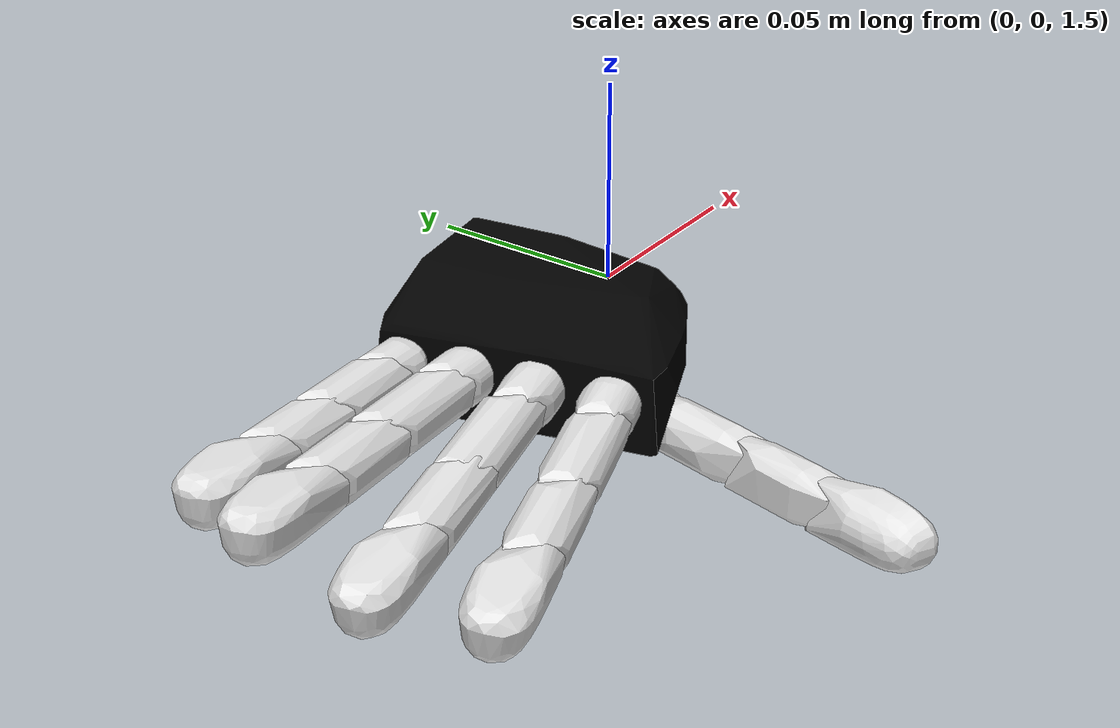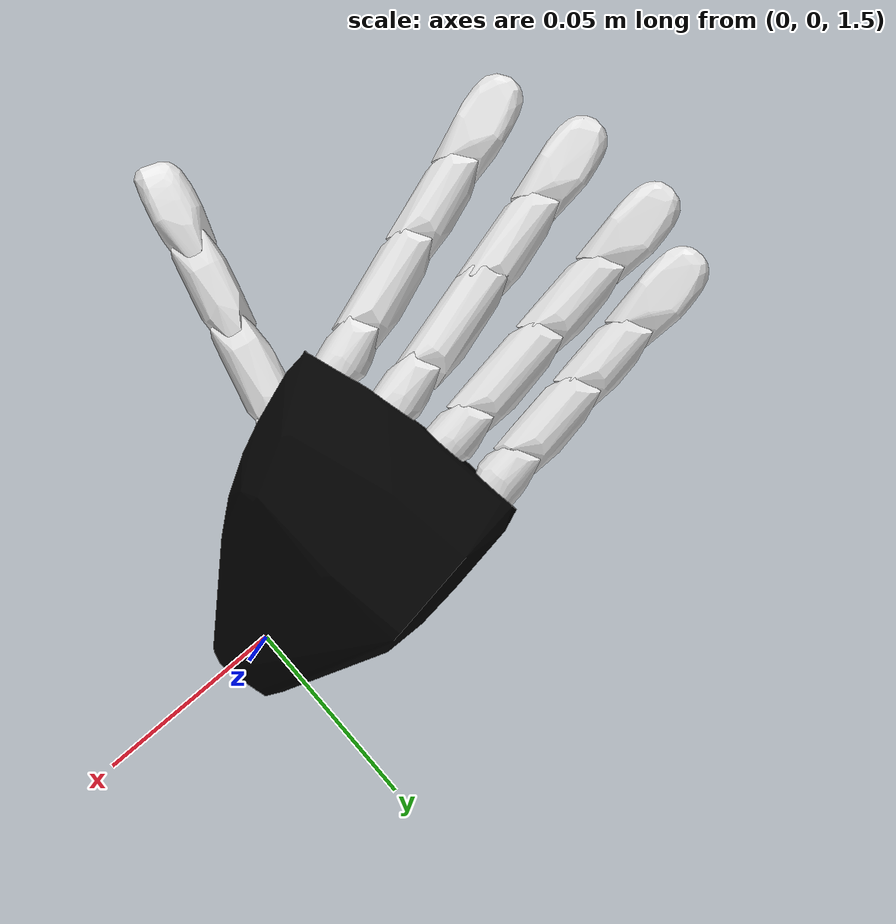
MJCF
<mujoco model="iCub">
    <compiler angle="radian" meshdir="../meshes/iCub/" inertiafromgeom="auto"/>
    <size njmax="1000" nconmax="10000" />
    <option timestep="0.005" gravity="0 0 -9.81" cone="pyramidal" iterations="20" noslip_iterations="20" noslip_tolerance="1e-6" />

    <default>
        <joint limited="true" damping="5.0" stiffness="0.01" frictionloss="0.01"/>
        <geom friction="1.0 0.005 0.0001" />
        <position kp="10" ctrllimited="true"/>
    </default>

    <asset>
        <mesh name="col_RightHandPalm"                              file="col_RightHandPalm.stl" />
        <mesh name="col_RightThumb0"                                file="col_RightThumb0.stl" />
        <mesh name="col_RightThumb1"                                file="col_RightThumb1.stl" />
        <mesh name="col_RightThumb2"                                file="col_RightThumb2.stl" />
        <mesh name="col_RightThumb3"                                file="col_RightThumb3.stl" />
        <mesh name="col_RightIndex0"                                file="col_RightIndex0.stl" />
        <mesh name="col_RightIndex1"                                file="col_RightIndex1.stl" />
        <mesh name="col_RightIndex2"                                file="col_RightIndex2.stl" />
        <mesh name="col_RightIndex3"                                file="col_RightIndex3.stl" />
        <mesh name="col_RightMiddle0"                               file="col_RightMiddle0.stl" />
        <mesh name="col_RightMiddle1"                               file="col_RightMiddle1.stl" />
        <mesh name="col_RightMiddle2"                               file="col_RightMiddle2.stl" />
        <mesh name="col_RightMiddle3"                               file="col_RightMiddle3.stl" />
        <mesh name="col_RightRing0"                                 file="col_RightRing0.stl" />
        <mesh name="col_RightRing1"                                 file="col_RightRing1.stl" />
        <mesh name="col_RightRing2"                                 file="col_RightRing2.stl" />
        <mesh name="col_RightRing3"                                 file="col_RightRing3.stl" />
        <mesh name="col_RightLittle0"                               file="col_RightLittle0.stl" />
        <mesh name="col_RightLittle1"                               file="col_RightLittle1.stl" />
        <mesh name="col_RightLittle2"                               file="col_RightLittle2.stl" />
        <mesh name="col_RightLittle3"                               file="col_RightLittle3.stl" />

        <texture type="skybox" builtin="gradient" rgb1="0.3 0.5 0.7" rgb2="0 0 0" width="512" height="512"/>
        <texture name="texplane" type="2d" builtin="checker" rgb1=".2 .3 .4" rgb2=".1 0.15 0.2" width="512" height="512" mark="cross" markrgb=".8 .8 .8"/>
        <texture name="texgeom" type="cube" builtin="flat" mark="cross" width="127" height="1278" rgb1="0.8 0.6 0.4" rgb2="0.8 0.6 0.4" markrgb="1 1 1" random="0.01"/>
        <material name="matplane" reflectance="0.3" texture="texplane" texrepeat="1 1" texuniform="true"/>
        <material name="matgeom" texture="texgeom" texuniform="true" rgba="0.8 0.6 .4 1"/>
    </asset>

    <visual>
        <map force="0.1" zfar="30"/>
        <rgba haze="0.15 0.25 0.35 1"/>
        <quality shadowsize="2048"/>
        <global offwidth="800" offheight="800"/>
    </visual>

    <worldbody>
        <geom name="floor" pos="0 0 0" size="0 0 0.25" type="plane" material="matplane" condim="3" />
        <light directional="false" diffuse=".2 .2 .2" specular="0 0 0" pos="0 0 5" dir="0 0 -1" castshadow="false"/>
        <light mode="targetbodycom" target="icub_r_hand" directional="false" diffuse=".8 .8 .8" specular="0.3 0.3 0.3" pos="0 0 4.0" dir="0 0 -1" attenuation="3 0 0"/>

        <body name="icub_r_hand_welding" pos="0.0 0.0 1.5" quat="0.707106781 0.707106781 0 0" mocap="true">
            <geom name="icub_r_hand_welding_geom" type="sphere" rgba="0 0 0 0" size="0.01" contype="0" conaffinity="0" mass="0.0"/>
        </body>

        <body name="icub_r_hand" pos="0.0 0.0 1.5" quat="0.707106781 0.707106781 0 0">
            <inertial pos="-0.0646682 0.0056002 0.0226813" quat="-0.112385 0.892031 0.231018 0.37186" mass="0.248289" diaginertia="0.0100407 0.010002 0.00995729" />
            <joint name="r_hand_freejoint" type="free" limited="false" damping="0.0" stiffness="0.0" frictionloss="0.0"/>
            <geom pos="0.00271607 -0.0015568 -0.00248235" quat="0.701057 -0.701057 0.0922959 0.0922959" type="mesh" rgba="0 0 0 1" mesh="col_RightHandPalm" condim="4"  contype="1" conaffinity="1"/>
            <body name="r_hand_dh_frame" pos="-0.05765429784284365 -0.005556799999999987 0.013693832308330513" quat="0.09229593181512326 0.09229593181512327 -0.7010573877867474 0.7010573877867475" >
                <site name="r_hand_dh_frame_site" type="sphere" rgba="0 0 0 0" size="0.005"/>
                <site name="r_hand_dh_frame_site_rotated" type="box" rgba="0 0 0 0" size="0.005 0.005 0.005" quat="0.924 0 0.383 0"/>
            </body>
            <body name="r_hand_thumb_0" pos="-0.0318492 -0.0040568 0.0192027" quat="0.0382606 0.614855 -0.0162249 0.787545">
                <inertial pos="0 0 0" mass="0.01" diaginertia="0.001 0.001 0.001" />
                <joint name="r_hand_thumb_0_joint" pos="0 0 0" axis="0 0 1" range="0 1.5708" />
                <geom quat="0 -0.707107 0.707107 0" type="mesh" rgba="0.9 0.9 0.9 1" mesh="col_RightThumb0" friction="1.0 0.05 0.01" solimp="0.95 0.95 0.01" solref="0.01 0.5" condim="4" />
                <body name="r_hand_thumb_1" pos="0.0211 0.0049 0" quat="0.707107 -0.707107 0 0">
                    <inertial pos="0 0 0" mass="0.01" diaginertia="0.001 0.001 0.001" />
                    <joint name="r_hand_thumb_1_joint" pos="0 0 0" axis="0 0 1" range="0 1.5708" />
                    <geom quat="0 1 0 0" type="mesh" rgba="0.9 0.9 0.9 1" mesh="col_RightThumb1" friction="1.0 0.05 0.01" solimp="0.95 0.95 0.01" solref="0.01 0.5" condim="4" />
                    <body name="r_hand_thumb_2" pos="0.026 0 0">
                        <inertial pos="0 0 0" mass="0.01" diaginertia="0.001 0.001 0.001" />
                        <joint name="r_hand_thumb_2_joint" pos="0 0 0" axis="0 0 1" range="0 1.5708" stiffness="2"/>
                        <geom quat="0 1 0 0" type="mesh" rgba="0.9 0.9 0.9 1" mesh="col_RightThumb2" friction="1.0 0.05 0.01" solimp="0.95 0.95 0.01" solref="0.01 0.5" condim="4" />
                        <body name="r_hand_thumb_3" pos="0.022 0 0">
                            <inertial pos="0 0 0" mass="0.01" diaginertia="0.001 0.001 0.001" />
                            <joint name="r_hand_thumb_3_joint" pos="0 0 0" axis="0 0 1" range="0 1.5708" stiffness="3"/>
                            <geom quat="0 0 0 1" type="mesh" rgba="0.9 0.9 0.9 1" mesh="col_RightThumb3" friction="3.5 0.05 0.01"  solimp="0.95 0.95 0.01" solref="0.01 0.5" condim="4" priority="1"/>
                        </body>
                    </body>
                </body>
            </body>
            <body name="r_hand_index_0" pos="-0.0525584 0.0051432 0.0394733" quat="0.120133 0.114274 -0.727348 0.665939">
                <inertial pos="0 0 0" mass="0.01" diaginertia="0.001 0.001 0.001" />
                <joint name="r_hand_index_0_joint" pos="0 0 0" axis="0 0 1" range="0 0.349066" ref="0.349066" />
                <geom quat="0 0 1 0" type="mesh" rgba="0.9 0.9 0.9 1" mesh="col_RightIndex0" friction="1.0 0.05 0.01" solimp="0.95 0.95 0.01" solref="0.01 0.5" condim="4" />
                <body name="r_hand_index_1" pos="0.0148 0.00175 0" quat="0.707107 0.707107 0 0">
                    <inertial pos="0 0 0" mass="0.01" diaginertia="0.001 0.001 0.001" />
                    <joint name="r_hand_index_1_joint" pos="0 0 0" axis="0 0 1" range="0 1.5708" />
                    <geom quat="0 1 0 0" type="mesh" rgba="0.9 0.9 0.9 1" mesh="col_RightIndex1" friction="1.0 0.05 0.01" solimp="0.95 0.95 0.01" solref="0.01 0.5" condim="4" />
                    <body name="r_hand_index_2" pos="0.0259 0 0">
                        <inertial pos="0 0 0" mass="0.01" diaginertia="0.001 0.001 0.001" />
                        <joint name="r_hand_index_2_joint" pos="0 0 0" axis="0 0 1" range="0 1.5708" stiffness="2"/>
                        <geom quat="0 1 0 0" type="mesh" rgba="0.9 0.9 0.9 1" mesh="col_RightIndex2" friction="1.0 0.05 0.01" solimp="0.95 0.95 0.01" solref="0.01 0.5" condim="4" />
                        <body name="r_hand_index_3" pos="0.022 0 0">
                            <inertial pos="0 0 0" mass="0.01" diaginertia="0.001 0.001 0.001" />
                            <joint name="r_hand_index_3_joint" pos="0 0 0" axis="0 0 1" range="0 1.5708" stiffness="3"/>
                            <geom quat="0 0 1 0" type="mesh" rgba="0.9 0.9 0.9 1" mesh="col_RightIndex3" friction="3.5 0.05 0.01"  solimp="0.95 0.95 0.01" solref="0.01 0.5" condim="4" priority="1"/>
                        </body>
                    </body>
                </body>
            </body>
            <body name="r_hand_middle_0" pos="-0.0575405 0.0060432 0.023778" quat="0.0922959 0.0922959 -0.701057 0.701057">
                <inertial pos="0 0 0" mass="0.01" diaginertia="0.001 0.001 0.001" />
                <joint name="r_hand_middle_0_joint" pos="0 0 0" axis="0 0 1" range="-0.1 0.1" damping="1000000" />
                <geom pos="0 0 0.0035" type="mesh" rgba="0.9 0.9 0.9 1" mesh="col_RightMiddle0" friction="1.0 0.05 0.01" solimp="0.95 0.95 0.01" solref="0.01 0.5" condim="4" />
                <body name="r_hand_middle_1" pos="0.0153 0.0022 0" quat="0.707107 0.707107 0 0">
                    <inertial pos="0 0 0" mass="0.01" diaginertia="0.001 0.001 0.001" />
                    <joint name="r_hand_middle_1_joint" pos="0 0 0" axis="0 0 1" range="0 1.5708" />
                    <geom quat="0 1 0 0" type="mesh" rgba="0.9 0.9 0.9 1" mesh="col_RightMiddle1" friction="1.0 0.05 0.01" solimp="0.95 0.95 0.01" solref="0.01 0.5" condim="4" />
                    <body name="r_hand_middle_2" pos="0.0258 0 0">
                        <inertial pos="0 0 0" mass="0.01" diaginertia="0.001 0.001 0.001" />
                        <joint name="r_hand_middle_2_joint" pos="0 0 0" axis="0 0 1" range="0 1.5708" stiffness="2"/>
                        <geom quat="0 0 0 1" type="mesh" rgba="0.9 0.9 0.9 1" mesh="col_RightMiddle2" friction="1.0 0.05 0.01" solimp="0.95 0.95 0.01" solref="0.01 0.5" condim="4" />
                        <body name="r_hand_middle_3" pos="0.024 0 0">
                            <inertial pos="0 0 0" mass="0.01" diaginertia="0.001 0.001 0.001" />
                            <joint name="r_hand_middle_3_joint" pos="0 0 0" axis="0 0 1" range="0 1.5708" stiffness="3"/>
                            <geom quat="0 0 0 1" type="mesh" rgba="0.9 0.9 0.9 1" mesh="col_RightMiddle3" friction="3.5 0.05 0.01"  solimp="0.95 0.95 0.01" solref="0.01 0.5" condim="4" priority="1"/>
                        </body>
                    </body>
                </body>
            </body>
            <body name="r_hand_ring_0" pos="-0.0606911 0.0054432 0.00865823" quat="0.0851337 0.0244894 -0.698657 0.709951">
                <inertial pos="0 0 0" mass="0.01" diaginertia="0.001 0.001 0.001" />
                <joint name="r_hand_ring_0_joint" pos="0 0 0" axis="0 0 1" range="-0.349066 0" ref="-0.349066" />
                <geom quat="0 0 1 0" type="mesh" rgba="0.9 0.9 0.9 1" mesh="col_RightRing0" friction="1.0 0.05 0.01" solimp="0.95 0.95 0.01" solref="0.01 0.5" condim="4" />
                <body name="r_hand_ring_1" pos="0.0148 0.00175 0" quat="0.707107 0.707107 0 0">
                    <inertial pos="0 0 0" mass="0.01" diaginertia="0.001 0.001 0.001" />
                    <joint name="r_hand_ring_1_joint" pos="0 0 0" axis="0 0 1" range="0 1.5708" />
                    <geom type="mesh" rgba="0.9 0.9 0.9 1" mesh="col_RightRing1" friction="1.0 0.05 0.01" solimp="0.95 0.95 0.01" solref="0.01 0.5" condim="4" />
                    <body name="r_hand_ring_2" pos="0.0259 0 0">
                        <inertial pos="0 0 0" mass="0.01" diaginertia="0.001 0.001 0.001" />
                        <joint name="r_hand_ring_2_joint" pos="0 0 0" axis="0 0 1" range="0 1.5708" stiffness="2" frictionloss="1"/>
                        <geom quat="0 1 0 0" type="mesh" rgba="0.9 0.9 0.9 1" mesh="col_RightRing2" friction="1.0 0.05 0.01" solimp="0.95 0.95 0.01" solref="0.01 0.5" condim="4" />
                        <body name="r_hand_ring_3" pos="0.022 0 0">
                            <inertial pos="0 0 0" mass="0.01" diaginertia="0.001 0.001 0.001" />
                            <joint name="r_hand_ring_3_joint" pos="0 0 0" axis="0 0 1" range="0 1.5708" stiffness="3" frictionloss="1"/>
                            <geom quat="0 0 1 0" type="mesh" rgba="0.9 0.9 0.9 1" mesh="col_RightRing3" friction="3.5 0.05 0.01"  solimp="0.95 0.95 0.01" solref="0.01 0.5" condim="4" priority="1" />
                        </body>
                    </body>
                </body>
            </body>
            <body name="r_hand_little_0" pos="-0.063629 0.0044432 -0.0101109" quat="0.0851337 0.0244894 -0.698657 0.709951">
                <inertial pos="0 0 0" mass="0.01" diaginertia="0.001 0.001 0.001" />
                <joint name="r_hand_little_0_joint" pos="0 0 0" axis="0 0 1" range="-0.349066 0" ref="-0.349066"/>
                <geom pos="0 0 0.0038" type="mesh" rgba="0.9 0.9 0.9 1" mesh="col_RightLittle0" friction="1.0 0.05 0.01" solimp="0.95 0.95 0.01" solref="0.01 0.5" condim="4" />
                <body name="r_hand_little_1" pos="0.0148 -0.00175 0" quat="0.707107 0.707107 0 0">
                    <inertial pos="0 0 0" mass="0.01" diaginertia="0.001 0.001 0.001" />
                    <joint name="r_hand_little_1_joint" pos="0 0 0" axis="0 0 1" range="0 1.5708" />
                    <geom quat="0 1 0 0" type="mesh" rgba="0.9 0.9 0.9 1" mesh="col_RightLittle1" friction="1.0 0.05 0.01" solimp="0.95 0.95 0.01" solref="0.01 0.5" condim="4" />
                    <body name="r_hand_little_2" pos="0.0219 0 0">
                        <inertial pos="0 0 0" mass="0.01" diaginertia="0.001 0.001 0.001" />
                        <joint name="r_hand_little_2_joint" pos="0 0 0" axis="0 0 1" range="0 1.5708" stiffness="2" frictionloss="1"/>
                        <geom quat="0 1 0 0" type="mesh" rgba="0.9 0.9 0.9 1" mesh="col_RightLittle2" friction="1.0 0.05 0.01" solimp="0.95 0.95 0.01" solref="0.01 0.5" condim="4" />
                        <body name="r_hand_little_3" pos="0.019 0 0">
                            <inertial pos="0 0 0" mass="0.01" diaginertia="0.001 0.001 0.001" />
                            <joint name="r_hand_little_3_joint" pos="0 0 0" axis="0 0 1" range="0 1.5708" stiffness="3" frictionloss="1"/>
                            <geom quat="0 0 1 0" type="mesh" rgba="0.9 0.9 0.9 1" mesh="col_RightLittle3" friction="3.5 0.05 0.01"  solimp="0.95 0.95 0.01" solref="0.01 0.5" condim="4" priority="1"/>
                        </body>
                    </body>
                </body>
            </body>
        </body>
        <body name="front_camera" pos="-2 0 1.1" quat="-0.5 -0.5 0.5 0.5">
            <camera name="front_cam" fovy="70"/>
        </body>
        <body name="head_camera" pos="-0.22092635 -0.043454 1.37441891" quat="0.6627358084788864 0.19690682587955016 0.22088371902298165 0.6879093926528406">
            <camera name="head_cam" fovy="42.4608673089277"/>
        </body>
        <body name="head_camera_track_hand" pos="-0.22092635 -0.043454 1.37441891" quat="0.6627358084788864 0.19690682587955016 0.22088371902298165 0.6879093926528406">
            <camera name="head_cam_track_hand" fovy="42.4608673089277" mode="targetbody" target="icub_r_hand"/>
        </body>
    </worldbody>

    <tendon>
        <fixed name="r_pinky_tendon">
            <joint coef="0.5" joint="r_hand_little_1_joint"/>
            <joint coef="0.5" joint="r_hand_little_2_joint"/>
            <joint coef="0.5" joint="r_hand_little_3_joint"/>
            <joint coef="0.5" joint="r_hand_ring_1_joint"/>
            <joint coef="0.5" joint="r_hand_ring_2_joint"/>
            <joint coef="0.5" joint="r_hand_ring_3_joint"/>
        </fixed>
    </tendon>

    <tendon>
        <fixed name="r_middle_distal_tendon">
            <joint coef="1" joint="r_hand_middle_2_joint"/>
            <joint coef="1" joint="r_hand_middle_3_joint"/>
        </fixed>
    </tendon>

    <tendon>
        <fixed name="r_index_distal_tendon">
            <joint coef="1" joint="r_hand_index_2_joint"/>
            <joint coef="1" joint="r_hand_index_3_joint"/>
        </fixed>
    </tendon>

    <tendon>
        <fixed name="r_thumb_distal_tendon">
            <joint coef="1" joint="r_hand_thumb_2_joint"/>
            <joint coef="1" joint="r_hand_thumb_3_joint"/>
        </fixed>
    </tendon>

    <tendon>
        <fixed name="r_hand_finger_tendon">
            <joint coef="1" joint="r_hand_index_0_joint"/>
            <joint coef="0" joint="r_hand_middle_0_joint"/>
            <joint coef="-1" joint="r_hand_ring_0_joint"/>
            <joint coef="-1" joint="r_hand_little_0_joint"/>
        </fixed>
    </tendon>

    <contact>
        <exclude name="exclude_contact_body_1"       body1="icub_r_hand"          body2="r_hand_thumb_0"/>
        <exclude name="exclude_contact_body_2"       body1="icub_r_hand"          body2="r_hand_thumb_1"/>
        <exclude name="exclude_contact_body_3"       body1="icub_r_hand"          body2="r_hand_index_0"/>
        <exclude name="exclude_contact_body_4"       body1="icub_r_hand"          body2="r_hand_index_1"/>
        <exclude name="exclude_contact_body_5"       body1="icub_r_hand"          body2="r_hand_middle_0"/>
        <exclude name="exclude_contact_body_6"       body1="icub_r_hand"          body2="r_hand_middle_1"/>
        <exclude name="exclude_contact_body_7"       body1="icub_r_hand"          body2="r_hand_ring_0"/>
        <exclude name="exclude_contact_body_8"       body1="icub_r_hand"          body2="r_hand_ring_1"/>
        <exclude name="exclude_contact_body_9"       body1="icub_r_hand"          body2="r_hand_little_0"/>
        <exclude name="exclude_contact_body_10"      body1="icub_r_hand"          body2="r_hand_little_1"/>
    </contact>

    <equality>
        <weld body1="icub_r_hand_welding" body2="icub_r_hand"/>
    </equality>

    <actuator>
        <position name="r_hand_finger"          kp="25.0"       tendon="r_hand_finger_tendon"           ctrlrange="0 1.046666667"/>
        <position name="r_thumb_oppose"         kp="25.0"       joint="r_hand_thumb_0_joint"            ctrlrange="0 1.5708"/>
        <position name="r_thumb_proximal"       kp="20.0"       joint="r_hand_thumb_1_joint"            ctrlrange="0 1.5708"/>
        <position name="r_thumb_distal"         kp="10.0"       tendon="r_thumb_distal_tendon"          ctrlrange="0 2.965555556"/>
        <position name="r_index_proximal"       kp="20.0"       joint="r_hand_index_1_joint"            ctrlrange="0 1.5708"/>
        <position name="r_index_distal"         kp="10.0"       tendon="r_index_distal_tendon"          ctrlrange="0 2.965555556"/>
        <position name="r_middle_proximal"      kp="20.0"       joint="r_hand_middle_1_joint"           ctrlrange="0 1.5708"/>
        <position name="r_middle_distal"        kp="10.0"       tendon="r_middle_distal_tendon"         ctrlrange="0 2.965555556"/>
        <position name="r_pinky"                kp="15.0"       tendon="r_pinky_tendon"                 ctrlrange="0 4.36"/>
    </actuator>

</mujoco>
